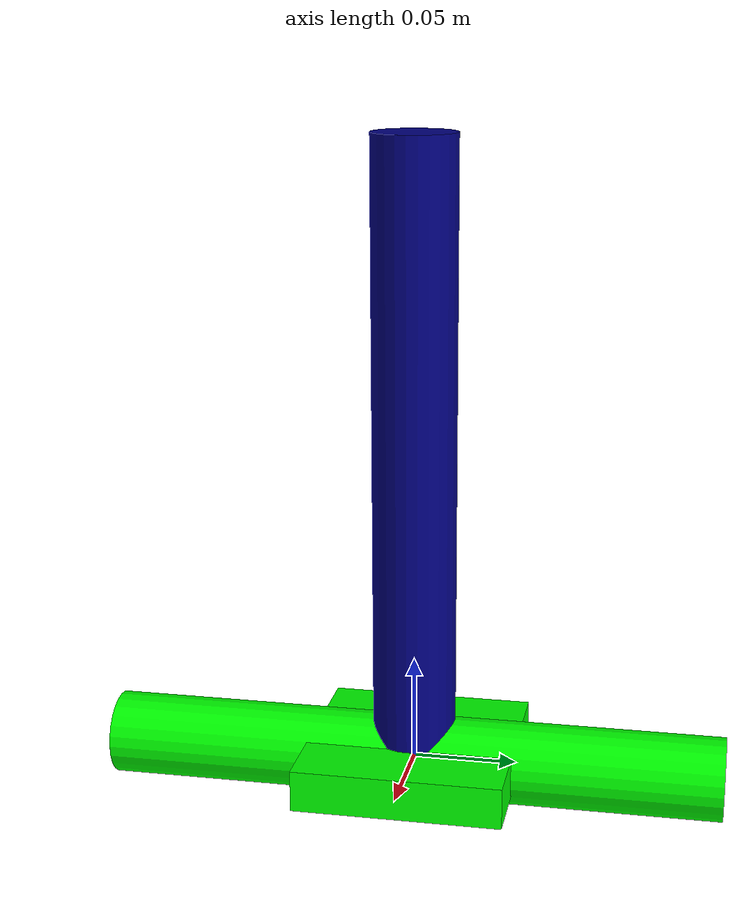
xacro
<robot name="polar" xmlns:xacro="http://www.ros.org/wiki/xacro">
     <xacro:include filename="common_properties.xacro" />

    <xacro:property name="base_hight" value="0.02" />
    <xacro:property name="base_length" value="0.1" />

    <xacro:property name="first_link_radius" value="0.02" />
    <xacro:property name="first_link_length" value="0.3" />

    <xacro:property name="second_link_radius" value="0.02" />
    <xacro:property name="second_link_length" value="0.3" />

    <xacro:property name="third_link_radius" value="0.01" />
    <xacro:property name="third_link_length" value="0.3" />

    <link name="base_footprint">
    </link>

    <link name="base_link">
        <visual>
            <geometry>
                <box size="${base_length} ${base_length} ${base_hight}" />
            </geometry>
            <origin xyz="0 0 0" rpy="0 0 0" />
            <material name="green" />
        </visual>
        <collision>
            <geometry>
                <box size="${base_length} ${base_length} ${base_hight}" />
            </geometry>
            <origin xyz="0 0 0" rpy="0 0 0" />
        </collision>
        <!-- add inertia -->
    </link>

    <link name="first_link">
        <visual>
            <geometry>
                <cylinder radius="${first_link_radius}" length="${first_link_length}" />
            </geometry>
            <origin xyz="0 0 ${first_link_length/2.0}" rpy="0 0 0" />
            <material name="blue" />
        </visual>
        <collision>
            <geometry>
                <cylinder radius="${first_link_radius}" length="${first_link_length}" />
            </geometry>
            <origin xyz="0 0 0" rpy="0 0 0" />
        </collision>
        <!-- add inertia -->
    </link>

    <link name="second_link">
        <visual>
            <geometry>
                <cylinder radius="${second_link_radius}" length="${second_link_length}" />
            </geometry>
            <origin xyz="0 0 0" rpy="${pi/2.0} 0 0" />
            <material name="green" />
        </visual>
        <collision>
            <geometry>
                <cylinder radius="${second_link_radius}" length="${second_link_length}" />
            </geometry>
            <origin xyz="0 0 0" rpy="${pi/2.0} 0 0" />
        </collision>
        <!-- add inertia -->
    </link>

    <link name="third_link">
        <visual>
            <geometry>
                <cylinder radius="${third_link_radius}" length="${third_link_length}" />
            </geometry>
            <origin xyz="0 0 0" rpy="0 0 0" />
            <material name="blue" />
        </visual>
        <collision>
            <geometry>
                <cylinder radius="${third_link_radius}" length="${third_link_length}" />
            </geometry>
            <origin xyz="0 0 0" rpy="0 0 0" />
        </collision>
        <!-- add inertia -->
    </link>

    <joint name="base_first_joint" type="prismatic">
        <parent link="base_link" />
        <child link="first_link" />
        <origin xyz="0 0 0" rpy="0 0 0" />
        <axis xyz="1 0 0" />
        <limit lower="-${base_length/2.0}" upper="${base_length/2.0}" velocity="100" effort="100" />
    </joint>

    <joint name="first_second_joint" type="prismatic">
        <parent link="first_link" />
        <child link="second_link" />
        <origin xyz="0 0 0" rpy="0 0 0" />
        <axis xyz="0 0 1" />
        <limit lower="0.0" upper="${first_link_length}" velocity="100" effort="100" />
    </joint>

    <joint name="second_third_joint" type="prismatic">
        <parent link="second_link" />
        <child link="third_link" />
        <origin xyz="0 0 0" rpy="${pi/2.0} 0 0" />
        <axis xyz="0 0 1" />
        <limit lower="0.0" upper="${second_link_length}" velocity="100" effort="100" />
    </joint>

    <joint name="base_joint" type="fixed">
        <parent link="base_footprint" />
        <child link="base_link" />
        <origin xyz="0 0 0" rpy="0 0 0" />
    </joint>

</robot>

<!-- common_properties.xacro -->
<robot xmlns:xacro="http://www.ros.org/wiki/xacro">

    <material name="blue">
        <color rgba="0 0 0.5 1" />
    </material>

    <material name="grey">
        <color rgba="0.5 0.5 0.5 1" />
    </material>

    <material name="orange">
        <color rgba="1 0.65 0 1" />
    </material>

    <material name="yellow">
        <color rgba="1 1 0 1" />
    </material>

    <material name="green">
        <color rgba="0 1 0 1" />
    </material>

    <xacro:macro name="box_inertia" params="m l w h xyz rpy" >
        <inertial>
            <origin xyz="${xyz}"  rpy="${rpy}" />
            <mass value="${m}" />
            <inertia ixx="${(m/12) * (h*h + l*l)}" ixy="0" ixz="0"
                     iyy="${(m/12) * (w*w + l*l)}" iyz="0"
                     izz="${(m/12) * (w*w + h*h)}" >
            </inertia>
        </inertial>

    </xacro:macro>

    <xacro:macro name="cylinder_inertia" params="m r h xyz rpy" >
        <inertial>
            <origin xyz="${xyz}"  rpy="${rpy}" />
            <mass value="${m}" />
            <inertia ixx="${(m/12) * (3*r*r + h*h)}" ixy="0" ixz="0"
                     iyy="${(m/12) * (3*(r*r) + h*h)}" iyz="0"
                     izz="${(m/2) * (r*r)}" >
            </inertia>
        </inertial>

    </xacro:macro>

    <xacro:macro name="sphere_inertia" params="m r xyz rpy" >
        <inertial>
            <origin xyz="${xyz}"  rpy="${rpy}" />
            <mass value="${m}" />
            <inertia ixx="${(2/5)* m * r*r}" ixy="0" ixz="0"
                     iyy="${(2/5) * m * r*r}" iyz="0"
                     izz="${(2/5) * m * r*r}"   >
            </inertia>
        </inertial>

    </xacro:macro>

</robot>
